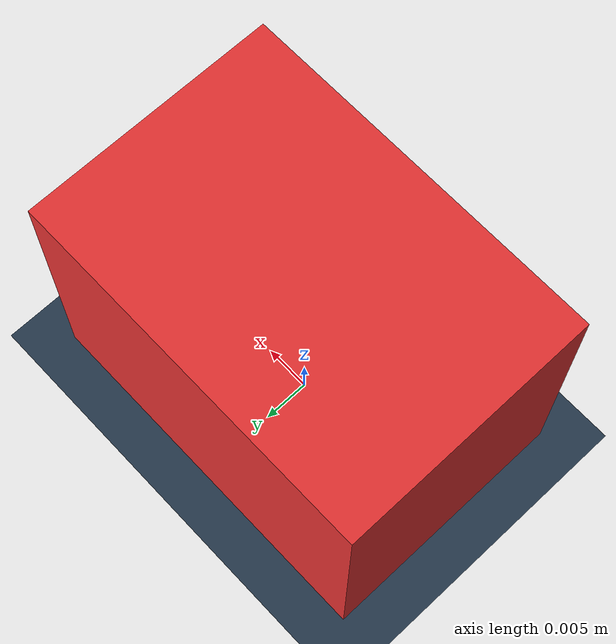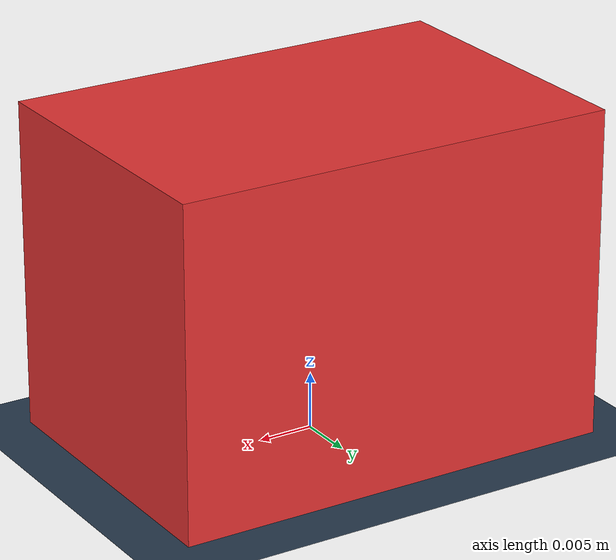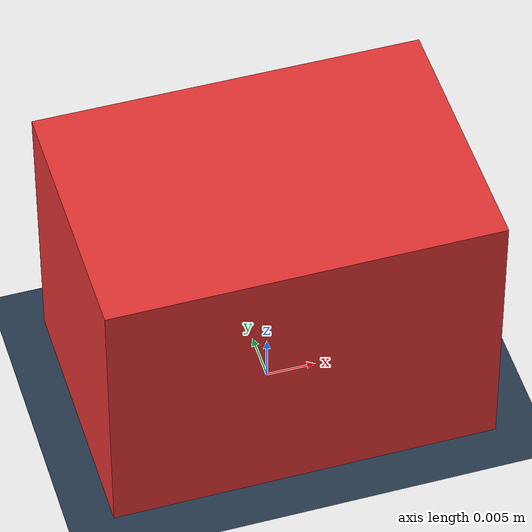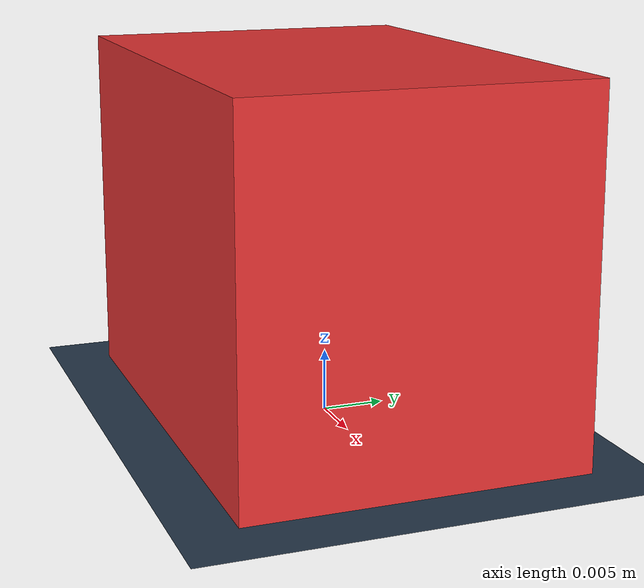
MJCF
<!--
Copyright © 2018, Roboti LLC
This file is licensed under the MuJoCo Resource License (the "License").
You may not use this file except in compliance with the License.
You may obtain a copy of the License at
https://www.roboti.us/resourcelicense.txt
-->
<?xml version="1.0" encoding="utf-8"?>
<mujoco>
    <visual>
        <global offwidth="640" offheight="480" fovy="45"/>
        <headlight ambient="0.5 0.5 0.5"/>
        <quality shadowsize="512"/>
        <map znear="0.001"/>
    </visual>

    <asset>
        <texture type="skybox" builtin="gradient" rgb1="0.3 0.5 0.7" rgb2="0 0 0" width="512" height="512"/>
        <texture name="texplane" type="2d" builtin="checker" rgb1=".2 .3 .4" rgb2=".1 0.15 0.2"
                 width="64" height="64"/>
        <texture name="texboxred" type="2d" builtin="flat" rgb1="0.9 0.2 0.2" width="8" height="8"/>

        <!--        retired texture-->
        <texture name="texboxchecker" type="cube" builtin="checker" rgb1="0.444 0.300 0.865" width="8" height="8"/>
        <texture name="texwall" builtin="checker" rgb1="0.956 0.921 0.282" width="512" height="512"/>

        <!--png texture-->
        <texture name="texwood1" type="2d" file="Texture/MuJoCo_use/Wood01.png"/>
        <texture name="texwood2" type="2d" file="Texture/MuJoCo_use/Wood02.png"/>
        <texture name="texwood3" type="2d" file="Texture/MuJoCo_use/Wood03.png"/>
        <texture name="texwood4" type="2d" file="Texture/MuJoCo_use/Wood04.png"/>
        <texture name="texwood7" type="2d" file="Texture/MuJoCo_use/Wood07.png"/>
        <texture name="texwood10" type="2d" file="Texture/MuJoCo_use/Wood10.png"/>
        <texture name="texwood11" type="2d" file="Texture/MuJoCo_use/Wood11.png"/>
        <texture name="texwood12" type="2d" file="Texture/MuJoCo_use/Wood12.png"/>
        <texture name="texwood13" type="2d" file="Texture/MuJoCo_use/Wood13.png"/>
        <texture name="texwood16" type="2d" file="Texture/MuJoCo_use/Wood16.png"/>
        <texture name="texwood18" type="2d" file="Texture/MuJoCo_use/Wood18.png"/>

        <material name="matplane" texture="texplane" texrepeat="200 200"/>
        <material name="matbox" texture="texboxred" emission="0" texrepeat="4 4"/>
        <material name="matwall" texture="texwall" emission="0"/>

    </asset>

    <worldbody>
        <geom name="ground" type="plane" size="100 100 0.1" pos="0 0 0" quat="1 0 0 0" material="matplane" condim="1"/>

        <body name="box" pos="0 0 0.0145">
            <geom name="boxgeom" size="0.01975 0.0135 0.0145" type="box" material="matbox"/>

        </body>

        <light name="light1" pos="0 -5 10" mode="targetbody" target="box" directional="false"/>
        <light name="light2" pos="0 -5 10" mode="targetbody" target="box" directional="false"/>

        <camera name="targetcam" pos="0 -0.282 0.0145" mode="targetbody" target="box" fovy="45"/>

    </worldbody>
</mujoco>
